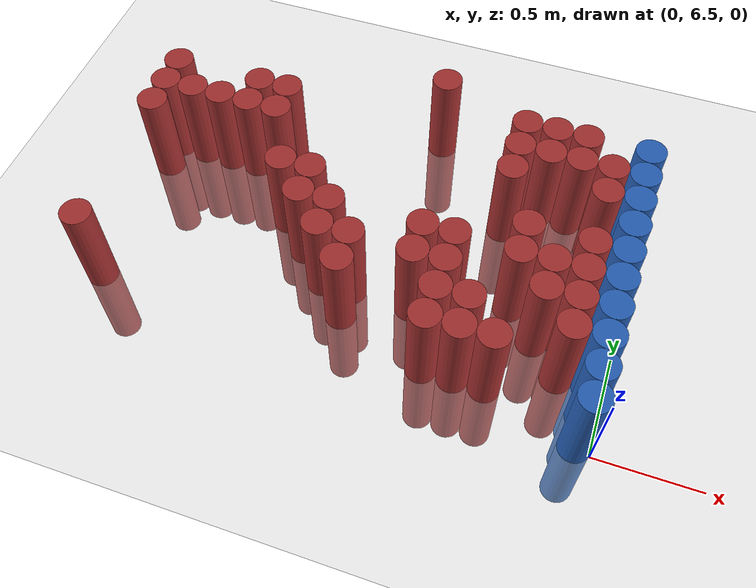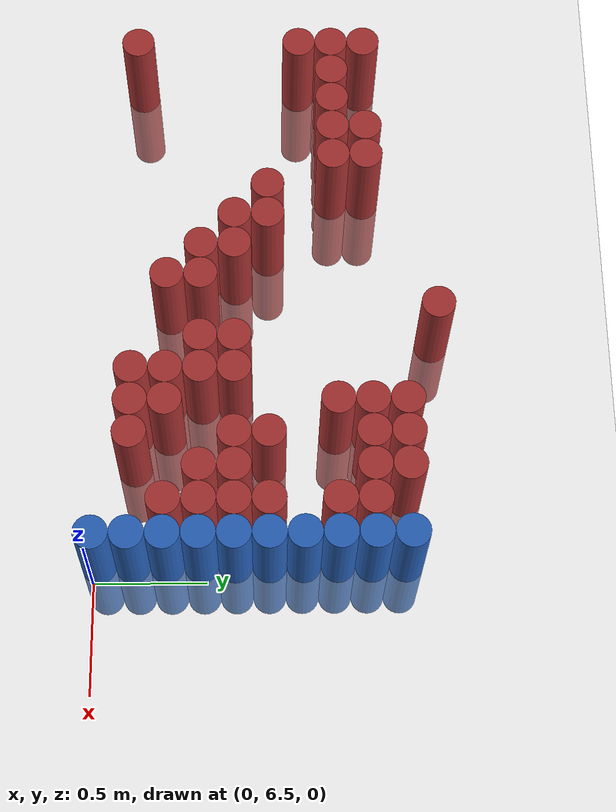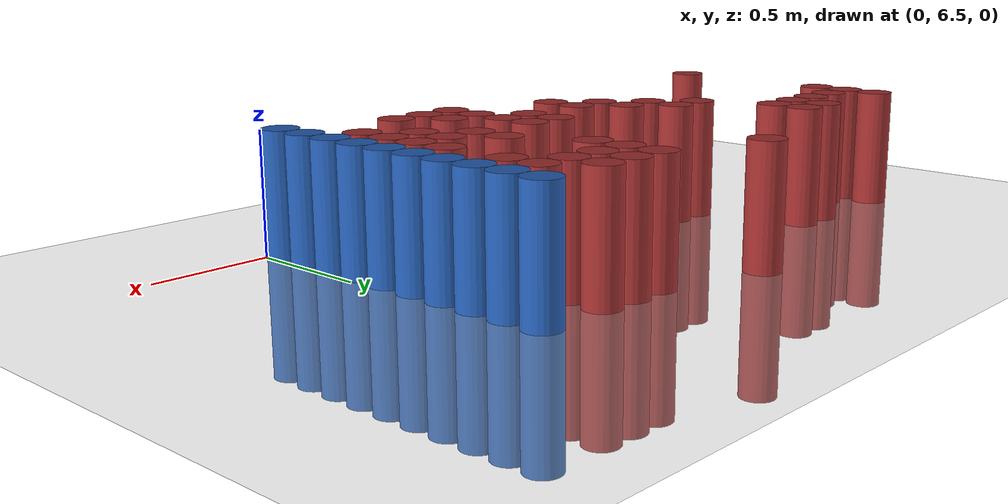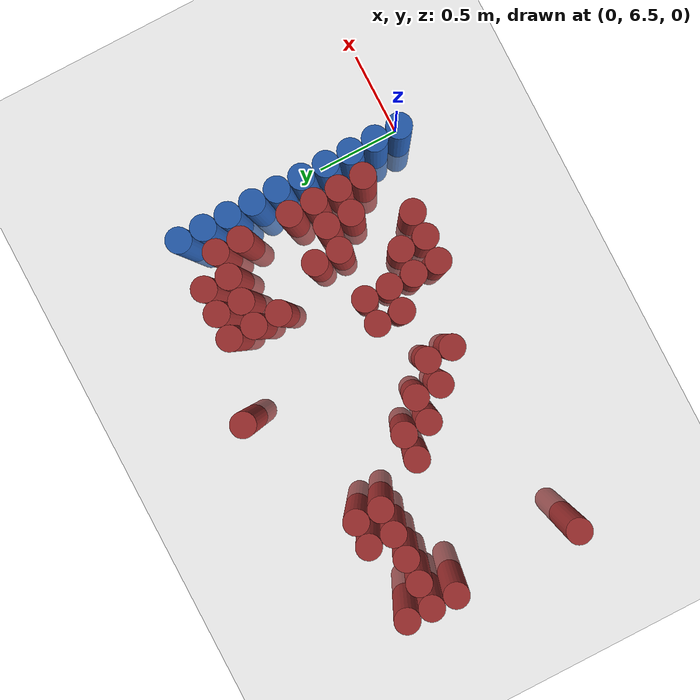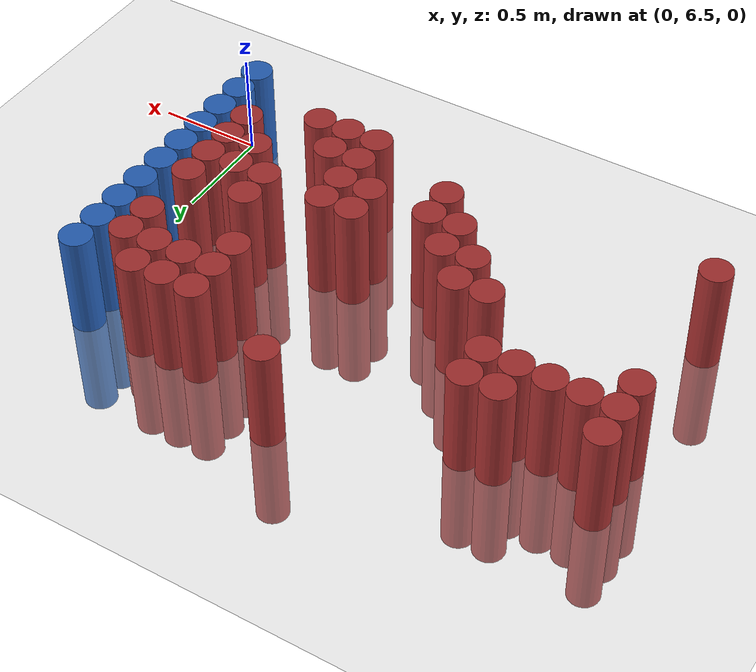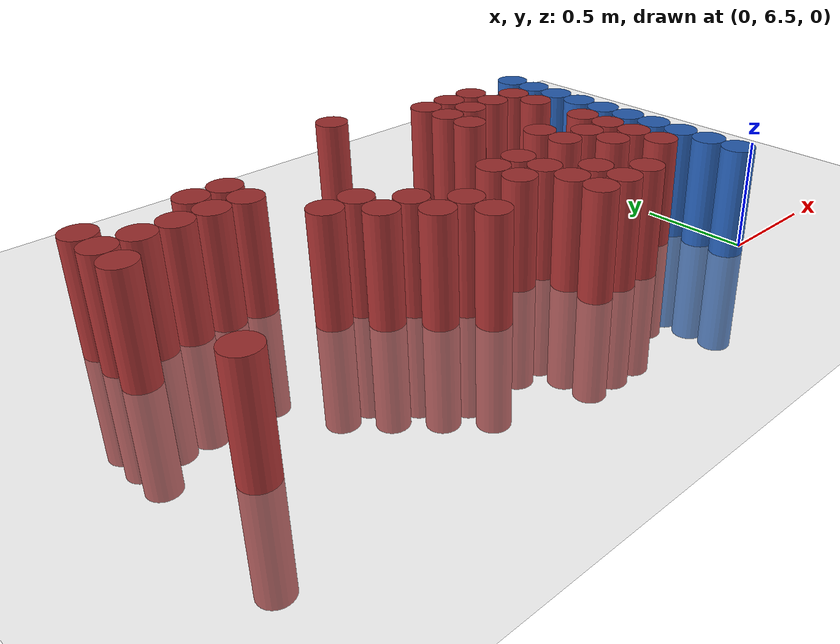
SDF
<sdf version="1.6">
 <world name="default">
  <model name="ground_plane">
   <static>1</static>
   <link name="link">
    <collision name="collision">
     <geometry><plane><normal>0 0 1</normal><size>100 100</size></plane></geometry>
     <surface><friction><ode><mu>100</mu><mu2>50</mu2></ode></friction></surface>
    </collision>
    <visual name="visual">
     <cast_shadows>0</cast_shadows>
     <geometry><plane><normal>0 0 1</normal><size>100 100</size></plane></geometry>
     <material>
      <script><uri>file://media/materials/scripts/gazebo.material</uri><name>Gazebo/Grey</name></script>
     </material>
    </visual>
   </link>
  </model>
  <model name="unit_cylinder_176">
   <static>1</static>
   <pose>-2.475000 6.675000 0.000000 0.000000 0.000000 0.000000</pose>
   <link name="link">
    <inertial>
     <mass>1</mass>
     <inertia><ixx>0.145833</ixx><ixy>0</ixy><ixz>0</ixz><iyy>0.145833</iyy><iyz>0</iyz><izz>0.125</izz></inertia>
    </inertial>
    <collision name="collision">
     <geometry><cylinder><radius>0.075000</radius><length>1</length></cylinder></geometry>
    </collision>
    <visual name="visual">
     <geometry><cylinder><radius>0.075000</radius><length>1</length></cylinder></geometry>
     <material>
      <ambient>0.648000 0.192000 0.192000 1</ambient>
      <diffuse>0.648000 0.192000 0.192000 1</diffuse>
     </material>
     <material>
      <script><name>Gazebo/Grey</name><uri>file://media/materials/scripts/gazebo.material</uri></script>
     </material>
    </visual>
   </link>
  </model>
  <model name="unit_cylinder_177">
   <static>1</static>
   <pose>-2.475000 7.425000 0.000000 0.000000 0.000000 0.000000</pose>
   <link name="link">
    <inertial>
     <mass>1</mass>
     <inertia><ixx>0.145833</ixx><ixy>0</ixy><ixz>0</ixz><iyy>0.145833</iyy><iyz>0</iyz><izz>0.125</izz></inertia>
    </inertial>
    <collision name="collision">
     <geometry><cylinder><radius>0.075000</radius><length>1</length></cylinder></geometry>
    </collision>
    <visual name="visual">
     <geometry><cylinder><radius>0.075000</radius><length>1</length></cylinder></geometry>
     <material>
      <ambient>0.648000 0.192000 0.192000 1</ambient>
      <diffuse>0.648000 0.192000 0.192000 1</diffuse>
     </material>
     <material>
      <script><name>Gazebo/Grey</name><uri>file://media/materials/scripts/gazebo.material</uri></script>
     </material>
    </visual>
   </link>
  </model>
  <model name="unit_cylinder_178">
   <static>1</static>
   <pose>-2.475000 7.575000 0.000000 0.000000 0.000000 0.000000</pose>
   <link name="link">
    <inertial>
     <mass>1</mass>
     <inertia><ixx>0.145833</ixx><ixy>0</ixy><ixz>0</ixz><iyy>0.145833</iyy><iyz>0</iyz><izz>0.125</izz></inertia>
    </inertial>
    <collision name="collision">
     <geometry><cylinder><radius>0.075000</radius><length>1</length></cylinder></geometry>
    </collision>
    <visual name="visual">
     <geometry><cylinder><radius>0.075000</radius><length>1</length></cylinder></geometry>
     <material>
      <ambient>0.648000 0.192000 0.192000 1</ambient>
      <diffuse>0.648000 0.192000 0.192000 1</diffuse>
     </material>
     <material>
      <script><name>Gazebo/Grey</name><uri>file://media/materials/scripts/gazebo.material</uri></script>
     </material>
    </visual>
   </link>
  </model>
  <model name="unit_cylinder_179">
   <static>1</static>
   <pose>-2.475000 7.725000 0.000000 0.000000 0.000000 0.000000</pose>
   <link name="link">
    <inertial>
     <mass>1</mass>
     <inertia><ixx>0.145833</ixx><ixy>0</ixy><ixz>0</ixz><iyy>0.145833</iyy><iyz>0</iyz><izz>0.125</izz></inertia>
    </inertial>
    <collision name="collision">
     <geometry><cylinder><radius>0.075000</radius><length>1</length></cylinder></geometry>
    </collision>
    <visual name="visual">
     <geometry><cylinder><radius>0.075000</radius><length>1</length></cylinder></geometry>
     <material>
      <ambient>0.648000 0.192000 0.192000 1</ambient>
      <diffuse>0.648000 0.192000 0.192000 1</diffuse>
     </material>
     <material>
      <script><name>Gazebo/Grey</name><uri>file://media/materials/scripts/gazebo.material</uri></script>
     </material>
    </visual>
   </link>
  </model>
  <model name="unit_cylinder_183">
   <static>1</static>
   <pose>-2.325000 7.575000 0.000000 0.000000 0.000000 0.000000</pose>
   <link name="link">
    <inertial>
     <mass>1</mass>
     <inertia><ixx>0.145833</ixx><ixy>0</ixy><ixz>0</ixz><iyy>0.145833</iyy><iyz>0</iyz><izz>0.125</izz></inertia>
    </inertial>
    <collision name="collision">
     <geometry><cylinder><radius>0.075000</radius><length>1</length></cylinder></geometry>
    </collision>
    <visual name="visual">
     <geometry><cylinder><radius>0.075000</radius><length>1</length></cylinder></geometry>
     <material>
      <ambient>0.648000 0.192000 0.192000 1</ambient>
      <diffuse>0.648000 0.192000 0.192000 1</diffuse>
     </material>
     <material>
      <script><name>Gazebo/Grey</name><uri>file://media/materials/scripts/gazebo.material</uri></script>
     </material>
    </visual>
   </link>
  </model>
  <model name="unit_cylinder_186">
   <static>1</static>
   <pose>-2.175000 7.575000 0.000000 0.000000 0.000000 0.000000</pose>
   <link name="link">
    <inertial>
     <mass>1</mass>
     <inertia><ixx>0.145833</ixx><ixy>0</ixy><ixz>0</ixz><iyy>0.145833</iyy><iyz>0</iyz><izz>0.125</izz></inertia>
    </inertial>
    <collision name="collision">
     <geometry><cylinder><radius>0.075000</radius><length>1</length></cylinder></geometry>
    </collision>
    <visual name="visual">
     <geometry><cylinder><radius>0.075000</radius><length>1</length></cylinder></geometry>
     <material>
      <ambient>0.648000 0.192000 0.192000 1</ambient>
      <diffuse>0.648000 0.192000 0.192000 1</diffuse>
     </material>
     <material>
      <script><name>Gazebo/Grey</name><uri>file://media/materials/scripts/gazebo.material</uri></script>
     </material>
    </visual>
   </link>
  </model>
  <model name="unit_cylinder_189">
   <static>1</static>
   <pose>-2.025000 7.575000 0.000000 0.000000 0.000000 0.000000</pose>
   <link name="link">
    <inertial>
     <mass>1</mass>
     <inertia><ixx>0.145833</ixx><ixy>0</ixy><ixz>0</ixz><iyy>0.145833</iyy><iyz>0</iyz><izz>0.125</izz></inertia>
    </inertial>
    <collision name="collision">
     <geometry><cylinder><radius>0.075000</radius><length>1</length></cylinder></geometry>
    </collision>
    <visual name="visual">
     <geometry><cylinder><radius>0.075000</radius><length>1</length></cylinder></geometry>
     <material>
      <ambient>0.648000 0.192000 0.192000 1</ambient>
      <diffuse>0.648000 0.192000 0.192000 1</diffuse>
     </material>
     <material>
      <script><name>Gazebo/Grey</name><uri>file://media/materials/scripts/gazebo.material</uri></script>
     </material>
    </visual>
   </link>
  </model>
  <model name="unit_cylinder_190">
   <static>1</static>
   <pose>-2.025000 7.725000 0.000000 0.000000 0.000000 0.000000</pose>
   <link name="link">
    <inertial>
     <mass>1</mass>
     <inertia><ixx>0.145833</ixx><ixy>0</ixy><ixz>0</ixz><iyy>0.145833</iyy><iyz>0</iyz><izz>0.125</izz></inertia>
    </inertial>
    <collision name="collision">
     <geometry><cylinder><radius>0.075000</radius><length>1</length></cylinder></geometry>
    </collision>
    <visual name="visual">
     <geometry><cylinder><radius>0.075000</radius><length>1</length></cylinder></geometry>
     <material>
      <ambient>0.648000 0.192000 0.192000 1</ambient>
      <diffuse>0.648000 0.192000 0.192000 1</diffuse>
     </material>
     <material>
      <script><name>Gazebo/Grey</name><uri>file://media/materials/scripts/gazebo.material</uri></script>
     </material>
    </visual>
   </link>
  </model>
  <model name="unit_cylinder_193">
   <static>1</static>
   <pose>-1.875000 7.575000 0.000000 0.000000 0.000000 0.000000</pose>
   <link name="link">
    <inertial>
     <mass>1</mass>
     <inertia><ixx>0.145833</ixx><ixy>0</ixy><ixz>0</ixz><iyy>0.145833</iyy><iyz>0</iyz><izz>0.125</izz></inertia>
    </inertial>
    <collision name="collision">
     <geometry><cylinder><radius>0.075000</radius><length>1</length></cylinder></geometry>
    </collision>
    <visual name="visual">
     <geometry><cylinder><radius>0.075000</radius><length>1</length></cylinder></geometry>
     <material>
      <ambient>0.648000 0.192000 0.192000 1</ambient>
      <diffuse>0.648000 0.192000 0.192000 1</diffuse>
     </material>
     <material>
      <script><name>Gazebo/Grey</name><uri>file://media/materials/scripts/gazebo.material</uri></script>
     </material>
    </visual>
   </link>
  </model>
  <model name="unit_cylinder_194">
   <static>1</static>
   <pose>-1.875000 7.725000 0.000000 0.000000 0.000000 0.000000</pose>
   <link name="link">
    <inertial>
     <mass>1</mass>
     <inertia><ixx>0.145833</ixx><ixy>0</ixy><ixz>0</ixz><iyy>0.145833</iyy><iyz>0</iyz><izz>0.125</izz></inertia>
    </inertial>
    <collision name="collision">
     <geometry><cylinder><radius>0.075000</radius><length>1</length></cylinder></geometry>
    </collision>
    <visual name="visual">
     <geometry><cylinder><radius>0.075000</radius><length>1</length></cylinder></geometry>
     <material>
      <ambient>0.648000 0.192000 0.192000 1</ambient>
      <diffuse>0.648000 0.192000 0.192000 1</diffuse>
     </material>
     <material>
      <script><name>Gazebo/Grey</name><uri>file://media/materials/scripts/gazebo.material</uri></script>
     </material>
    </visual>
   </link>
  </model>
  <model name="unit_cylinder_202">
   <static>1</static>
   <pose>-1.725000 7.275000 0.000000 0.000000 0.000000 0.000000</pose>
   <link name="link">
    <inertial>
     <mass>1</mass>
     <inertia><ixx>0.145833</ixx><ixy>0</ixy><ixz>0</ixz><iyy>0.145833</iyy><iyz>0</iyz><izz>0.125</izz></inertia>
    </inertial>
    <collision name="collision">
     <geometry><cylinder><radius>0.075000</radius><length>1</length></cylinder></geometry>
    </collision>
    <visual name="visual">
     <geometry><cylinder><radius>0.075000</radius><length>1</length></cylinder></geometry>
     <material>
      <ambient>0.648000 0.192000 0.192000 1</ambient>
      <diffuse>0.648000 0.192000 0.192000 1</diffuse>
     </material>
     <material>
      <script><name>Gazebo/Grey</name><uri>file://media/materials/scripts/gazebo.material</uri></script>
     </material>
    </visual>
   </link>
  </model>
  <model name="unit_cylinder_205">
   <static>1</static>
   <pose>-1.575000 7.125000 0.000000 0.000000 0.000000 0.000000</pose>
   <link name="link">
    <inertial>
     <mass>1</mass>
     <inertia><ixx>0.145833</ixx><ixy>0</ixy><ixz>0</ixz><iyy>0.145833</iyy><iyz>0</iyz><izz>0.125</izz></inertia>
    </inertial>
    <collision name="collision">
     <geometry><cylinder><radius>0.075000</radius><length>1</length></cylinder></geometry>
    </collision>
    <visual name="visual">
     <geometry><cylinder><radius>0.075000</radius><length>1</length></cylinder></geometry>
     <material>
      <ambient>0.648000 0.192000 0.192000 1</ambient>
      <diffuse>0.648000 0.192000 0.192000 1</diffuse>
     </material>
     <material>
      <script><name>Gazebo/Grey</name><uri>file://media/materials/scripts/gazebo.material</uri></script>
     </material>
    </visual>
   </link>
  </model>
  <model name="unit_cylinder_206">
   <static>1</static>
   <pose>-1.575000 7.275000 0.000000 0.000000 0.000000 0.000000</pose>
   <link name="link">
    <inertial>
     <mass>1</mass>
     <inertia><ixx>0.145833</ixx><ixy>0</ixy><ixz>0</ixz><iyy>0.145833</iyy><iyz>0</iyz><izz>0.125</izz></inertia>
    </inertial>
    <collision name="collision">
     <geometry><cylinder><radius>0.075000</radius><length>1</length></cylinder></geometry>
    </collision>
    <visual name="visual">
     <geometry><cylinder><radius>0.075000</radius><length>1</length></cylinder></geometry>
     <material>
      <ambient>0.648000 0.192000 0.192000 1</ambient>
      <diffuse>0.648000 0.192000 0.192000 1</diffuse>
     </material>
     <material>
      <script><name>Gazebo/Grey</name><uri>file://media/materials/scripts/gazebo.material</uri></script>
     </material>
    </visual>
   </link>
  </model>
  <model name="unit_cylinder_212">
   <static>1</static>
   <pose>-1.425000 6.975000 0.000000 0.000000 0.000000 0.000000</pose>
   <link name="link">
    <inertial>
     <mass>1</mass>
     <inertia><ixx>0.145833</ixx><ixy>0</ixy><ixz>0</ixz><iyy>0.145833</iyy><iyz>0</iyz><izz>0.125</izz></inertia>
    </inertial>
    <collision name="collision">
     <geometry><cylinder><radius>0.075000</radius><length>1</length></cylinder></geometry>
    </collision>
    <visual name="visual">
     <geometry><cylinder><radius>0.075000</radius><length>1</length></cylinder></geometry>
     <material>
      <ambient>0.648000 0.192000 0.192000 1</ambient>
      <diffuse>0.648000 0.192000 0.192000 1</diffuse>
     </material>
     <material>
      <script><name>Gazebo/Grey</name><uri>file://media/materials/scripts/gazebo.material</uri></script>
     </material>
    </visual>
   </link>
  </model>
  <model name="unit_cylinder_213">
   <static>1</static>
   <pose>-1.425000 7.125000 0.000000 0.000000 0.000000 0.000000</pose>
   <link name="link">
    <inertial>
     <mass>1</mass>
     <inertia><ixx>0.145833</ixx><ixy>0</ixy><ixz>0</ixz><iyy>0.145833</iyy><iyz>0</iyz><izz>0.125</izz></inertia>
    </inertial>
    <collision name="collision">
     <geometry><cylinder><radius>0.075000</radius><length>1</length></cylinder></geometry>
    </collision>
    <visual name="visual">
     <geometry><cylinder><radius>0.075000</radius><length>1</length></cylinder></geometry>
     <material>
      <ambient>0.648000 0.192000 0.192000 1</ambient>
      <diffuse>0.648000 0.192000 0.192000 1</diffuse>
     </material>
     <material>
      <script><name>Gazebo/Grey</name><uri>file://media/materials/scripts/gazebo.material</uri></script>
     </material>
    </visual>
   </link>
  </model>
  <model name="unit_cylinder_217">
   <static>1</static>
   <pose>-1.275000 6.825000 0.000000 0.000000 0.000000 0.000000</pose>
   <link name="link">
    <inertial>
     <mass>1</mass>
     <inertia><ixx>0.145833</ixx><ixy>0</ixy><ixz>0</ixz><iyy>0.145833</iyy><iyz>0</iyz><izz>0.125</izz></inertia>
    </inertial>
    <collision name="collision">
     <geometry><cylinder><radius>0.075000</radius><length>1</length></cylinder></geometry>
    </collision>
    <visual name="visual">
     <geometry><cylinder><radius>0.075000</radius><length>1</length></cylinder></geometry>
     <material>
      <ambient>0.648000 0.192000 0.192000 1</ambient>
      <diffuse>0.648000 0.192000 0.192000 1</diffuse>
     </material>
     <material>
      <script><name>Gazebo/Grey</name><uri>file://media/materials/scripts/gazebo.material</uri></script>
     </material>
    </visual>
   </link>
  </model>
  <model name="unit_cylinder_218">
   <static>1</static>
   <pose>-1.275000 6.975000 0.000000 0.000000 0.000000 0.000000</pose>
   <link name="link">
    <inertial>
     <mass>1</mass>
     <inertia><ixx>0.145833</ixx><ixy>0</ixy><ixz>0</ixz><iyy>0.145833</iyy><iyz>0</iyz><izz>0.125</izz></inertia>
    </inertial>
    <collision name="collision">
     <geometry><cylinder><radius>0.075000</radius><length>1</length></cylinder></geometry>
    </collision>
    <visual name="visual">
     <geometry><cylinder><radius>0.075000</radius><length>1</length></cylinder></geometry>
     <material>
      <ambient>0.648000 0.192000 0.192000 1</ambient>
      <diffuse>0.648000 0.192000 0.192000 1</diffuse>
     </material>
     <material>
      <script><name>Gazebo/Grey</name><uri>file://media/materials/scripts/gazebo.material</uri></script>
     </material>
    </visual>
   </link>
  </model>
  <model name="unit_cylinder_226">
   <static>1</static>
   <pose>-1.125000 8.025000 0.000000 0.000000 0.000000 0.000000</pose>
   <link name="link">
    <inertial>
     <mass>1</mass>
     <inertia><ixx>0.145833</ixx><ixy>0</ixy><ixz>0</ixz><iyy>0.145833</iyy><iyz>0</iyz><izz>0.125</izz></inertia>
    </inertial>
    <collision name="collision">
     <geometry><cylinder><radius>0.075000</radius><length>1</length></cylinder></geometry>
    </collision>
    <visual name="visual">
     <geometry><cylinder><radius>0.075000</radius><length>1</length></cylinder></geometry>
     <material>
      <ambient>0.648000 0.192000 0.192000 1</ambient>
      <diffuse>0.648000 0.192000 0.192000 1</diffuse>
     </material>
     <material>
      <script><name>Gazebo/Grey</name><uri>file://media/materials/scripts/gazebo.material</uri></script>
     </material>
    </visual>
   </link>
  </model>
  <model name="unit_cylinder_233">
   <static>1</static>
   <pose>-0.975000 6.975000 0.000000 0.000000 0.000000 0.000000</pose>
   <link name="link">
    <inertial>
     <mass>1</mass>
     <inertia><ixx>0.145833</ixx><ixy>0</ixy><ixz>0</ixz><iyy>0.145833</iyy><iyz>0</iyz><izz>0.125</izz></inertia>
    </inertial>
    <collision name="collision">
     <geometry><cylinder><radius>0.075000</radius><length>1</length></cylinder></geometry>
    </collision>
    <visual name="visual">
     <geometry><cylinder><radius>0.075000</radius><length>1</length></cylinder></geometry>
     <material>
      <ambient>0.648000 0.192000 0.192000 1</ambient>
      <diffuse>0.648000 0.192000 0.192000 1</diffuse>
     </material>
     <material>
      <script><name>Gazebo/Grey</name><uri>file://media/materials/scripts/gazebo.material</uri></script>
     </material>
    </visual>
   </link>
  </model>
  <model name="unit_cylinder_234">
   <static>1</static>
   <pose>-0.975000 7.125000 0.000000 0.000000 0.000000 0.000000</pose>
   <link name="link">
    <inertial>
     <mass>1</mass>
     <inertia><ixx>0.145833</ixx><ixy>0</ixy><ixz>0</ixz><iyy>0.145833</iyy><iyz>0</iyz><izz>0.125</izz></inertia>
    </inertial>
    <collision name="collision">
     <geometry><cylinder><radius>0.075000</radius><length>1</length></cylinder></geometry>
    </collision>
    <visual name="visual">
     <geometry><cylinder><radius>0.075000</radius><length>1</length></cylinder></geometry>
     <material>
      <ambient>0.648000 0.192000 0.192000 1</ambient>
      <diffuse>0.648000 0.192000 0.192000 1</diffuse>
     </material>
     <material>
      <script><name>Gazebo/Grey</name><uri>file://media/materials/scripts/gazebo.material</uri></script>
     </material>
    </visual>
   </link>
  </model>
  <model name="unit_cylinder_240">
   <static>1</static>
   <pose>-0.825000 6.675000 0.000000 0.000000 0.000000 0.000000</pose>
   <link name="link">
    <inertial>
     <mass>1</mass>
     <inertia><ixx>0.145833</ixx><ixy>0</ixy><ixz>0</ixz><iyy>0.145833</iyy><iyz>0</iyz><izz>0.125</izz></inertia>
    </inertial>
    <collision name="collision">
     <geometry><cylinder><radius>0.075000</radius><length>1</length></cylinder></geometry>
    </collision>
    <visual name="visual">
     <geometry><cylinder><radius>0.075000</radius><length>1</length></cylinder></geometry>
     <material>
      <ambient>0.648000 0.192000 0.192000 1</ambient>
      <diffuse>0.648000 0.192000 0.192000 1</diffuse>
     </material>
     <material>
      <script><name>Gazebo/Grey</name><uri>file://media/materials/scripts/gazebo.material</uri></script>
     </material>
    </visual>
   </link>
  </model>
  <model name="unit_cylinder_241">
   <static>1</static>
   <pose>-0.825000 6.825000 0.000000 0.000000 0.000000 0.000000</pose>
   <link name="link">
    <inertial>
     <mass>1</mass>
     <inertia><ixx>0.145833</ixx><ixy>0</ixy><ixz>0</ixz><iyy>0.145833</iyy><iyz>0</iyz><izz>0.125</izz></inertia>
    </inertial>
    <collision name="collision">
     <geometry><cylinder><radius>0.075000</radius><length>1</length></cylinder></geometry>
    </collision>
    <visual name="visual">
     <geometry><cylinder><radius>0.075000</radius><length>1</length></cylinder></geometry>
     <material>
      <ambient>0.648000 0.192000 0.192000 1</ambient>
      <diffuse>0.648000 0.192000 0.192000 1</diffuse>
     </material>
     <material>
      <script><name>Gazebo/Grey</name><uri>file://media/materials/scripts/gazebo.material</uri></script>
     </material>
    </visual>
   </link>
  </model>
  <model name="unit_cylinder_242">
   <static>1</static>
   <pose>-0.825000 6.975000 0.000000 0.000000 0.000000 0.000000</pose>
   <link name="link">
    <inertial>
     <mass>1</mass>
     <inertia><ixx>0.145833</ixx><ixy>0</ixy><ixz>0</ixz><iyy>0.145833</iyy><iyz>0</iyz><izz>0.125</izz></inertia>
    </inertial>
    <collision name="collision">
     <geometry><cylinder><radius>0.075000</radius><length>1</length></cylinder></geometry>
    </collision>
    <visual name="visual">
     <geometry><cylinder><radius>0.075000</radius><length>1</length></cylinder></geometry>
     <material>
      <ambient>0.648000 0.192000 0.192000 1</ambient>
      <diffuse>0.648000 0.192000 0.192000 1</diffuse>
     </material>
     <material>
      <script><name>Gazebo/Grey</name><uri>file://media/materials/scripts/gazebo.material</uri></script>
     </material>
    </visual>
   </link>
  </model>
  <model name="unit_cylinder_243">
   <static>1</static>
   <pose>-0.825000 7.125000 0.000000 0.000000 0.000000 0.000000</pose>
   <link name="link">
    <inertial>
     <mass>1</mass>
     <inertia><ixx>0.145833</ixx><ixy>0</ixy><ixz>0</ixz><iyy>0.145833</iyy><iyz>0</iyz><izz>0.125</izz></inertia>
    </inertial>
    <collision name="collision">
     <geometry><cylinder><radius>0.075000</radius><length>1</length></cylinder></geometry>
    </collision>
    <visual name="visual">
     <geometry><cylinder><radius>0.075000</radius><length>1</length></cylinder></geometry>
     <material>
      <ambient>0.648000 0.192000 0.192000 1</ambient>
      <diffuse>0.648000 0.192000 0.192000 1</diffuse>
     </material>
     <material>
      <script><name>Gazebo/Grey</name><uri>file://media/materials/scripts/gazebo.material</uri></script>
     </material>
    </visual>
   </link>
  </model>
  <model name="unit_cylinder_248">
   <static>1</static>
   <pose>-0.675000 6.675000 0.000000 0.000000 0.000000 0.000000</pose>
   <link name="link">
    <inertial>
     <mass>1</mass>
     <inertia><ixx>0.145833</ixx><ixy>0</ixy><ixz>0</ixz><iyy>0.145833</iyy><iyz>0</iyz><izz>0.125</izz></inertia>
    </inertial>
    <collision name="collision">
     <geometry><cylinder><radius>0.075000</radius><length>1</length></cylinder></geometry>
    </collision>
    <visual name="visual">
     <geometry><cylinder><radius>0.075000</radius><length>1</length></cylinder></geometry>
     <material>
      <ambient>0.648000 0.192000 0.192000 1</ambient>
      <diffuse>0.648000 0.192000 0.192000 1</diffuse>
     </material>
     <material>
      <script><name>Gazebo/Grey</name><uri>file://media/materials/scripts/gazebo.material</uri></script>
     </material>
    </visual>
   </link>
  </model>
  <model name="unit_cylinder_249">
   <static>1</static>
   <pose>-0.675000 6.825000 0.000000 0.000000 0.000000 0.000000</pose>
   <link name="link">
    <inertial>
     <mass>1</mass>
     <inertia><ixx>0.145833</ixx><ixy>0</ixy><ixz>0</ixz><iyy>0.145833</iyy><iyz>0</iyz><izz>0.125</izz></inertia>
    </inertial>
    <collision name="collision">
     <geometry><cylinder><radius>0.075000</radius><length>1</length></cylinder></geometry>
    </collision>
    <visual name="visual">
     <geometry><cylinder><radius>0.075000</radius><length>1</length></cylinder></geometry>
     <material>
      <ambient>0.648000 0.192000 0.192000 1</ambient>
      <diffuse>0.648000 0.192000 0.192000 1</diffuse>
     </material>
     <material>
      <script><name>Gazebo/Grey</name><uri>file://media/materials/scripts/gazebo.material</uri></script>
     </material>
    </visual>
   </link>
  </model>
  <model name="unit_cylinder_250">
   <static>1</static>
   <pose>-0.675000 7.575000 0.000000 0.000000 0.000000 0.000000</pose>
   <link name="link">
    <inertial>
     <mass>1</mass>
     <inertia><ixx>0.145833</ixx><ixy>0</ixy><ixz>0</ixz><iyy>0.145833</iyy><iyz>0</iyz><izz>0.125</izz></inertia>
    </inertial>
    <collision name="collision">
     <geometry><cylinder><radius>0.075000</radius><length>1</length></cylinder></geometry>
    </collision>
    <visual name="visual">
     <geometry><cylinder><radius>0.075000</radius><length>1</length></cylinder></geometry>
     <material>
      <ambient>0.648000 0.192000 0.192000 1</ambient>
      <diffuse>0.648000 0.192000 0.192000 1</diffuse>
     </material>
     <material>
      <script><name>Gazebo/Grey</name><uri>file://media/materials/scripts/gazebo.material</uri></script>
     </material>
    </visual>
   </link>
  </model>
  <model name="unit_cylinder_251">
   <static>1</static>
   <pose>-0.675000 7.725000 0.000000 0.000000 0.000000 0.000000</pose>
   <link name="link">
    <inertial>
     <mass>1</mass>
     <inertia><ixx>0.145833</ixx><ixy>0</ixy><ixz>0</ixz><iyy>0.145833</iyy><iyz>0</iyz><izz>0.125</izz></inertia>
    </inertial>
    <collision name="collision">
     <geometry><cylinder><radius>0.075000</radius><length>1</length></cylinder></geometry>
    </collision>
    <visual name="visual">
     <geometry><cylinder><radius>0.075000</radius><length>1</length></cylinder></geometry>
     <material>
      <ambient>0.648000 0.192000 0.192000 1</ambient>
      <diffuse>0.648000 0.192000 0.192000 1</diffuse>
     </material>
     <material>
      <script><name>Gazebo/Grey</name><uri>file://media/materials/scripts/gazebo.material</uri></script>
     </material>
    </visual>
   </link>
  </model>
  <model name="unit_cylinder_252">
   <static>1</static>
   <pose>-0.675000 7.875000 0.000000 0.000000 0.000000 0.000000</pose>
   <link name="link">
    <inertial>
     <mass>1</mass>
     <inertia><ixx>0.145833</ixx><ixy>0</ixy><ixz>0</ixz><iyy>0.145833</iyy><iyz>0</iyz><izz>0.125</izz></inertia>
    </inertial>
    <collision name="collision">
     <geometry><cylinder><radius>0.075000</radius><length>1</length></cylinder></geometry>
    </collision>
    <visual name="visual">
     <geometry><cylinder><radius>0.075000</radius><length>1</length></cylinder></geometry>
     <material>
      <ambient>0.648000 0.192000 0.192000 1</ambient>
      <diffuse>0.648000 0.192000 0.192000 1</diffuse>
     </material>
     <material>
      <script><name>Gazebo/Grey</name><uri>file://media/materials/scripts/gazebo.material</uri></script>
     </material>
    </visual>
   </link>
  </model>
  <model name="unit_cylinder_259">
   <static>1</static>
   <pose>-0.525000 6.675000 0.000000 0.000000 0.000000 0.000000</pose>
   <link name="link">
    <inertial>
     <mass>1</mass>
     <inertia><ixx>0.145833</ixx><ixy>0</ixy><ixz>0</ixz><iyy>0.145833</iyy><iyz>0</iyz><izz>0.125</izz></inertia>
    </inertial>
    <collision name="collision">
     <geometry><cylinder><radius>0.075000</radius><length>1</length></cylinder></geometry>
    </collision>
    <visual name="visual">
     <geometry><cylinder><radius>0.075000</radius><length>1</length></cylinder></geometry>
     <material>
      <ambient>0.648000 0.192000 0.192000 1</ambient>
      <diffuse>0.648000 0.192000 0.192000 1</diffuse>
     </material>
     <material>
      <script><name>Gazebo/Grey</name><uri>file://media/materials/scripts/gazebo.material</uri></script>
     </material>
    </visual>
   </link>
  </model>
  <model name="unit_cylinder_260">
   <static>1</static>
   <pose>-0.525000 7.125000 0.000000 0.000000 0.000000 0.000000</pose>
   <link name="link">
    <inertial>
     <mass>1</mass>
     <inertia><ixx>0.145833</ixx><ixy>0</ixy><ixz>0</ixz><iyy>0.145833</iyy><iyz>0</iyz><izz>0.125</izz></inertia>
    </inertial>
    <collision name="collision">
     <geometry><cylinder><radius>0.075000</radius><length>1</length></cylinder></geometry>
    </collision>
    <visual name="visual">
     <geometry><cylinder><radius>0.075000</radius><length>1</length></cylinder></geometry>
     <material>
      <ambient>0.648000 0.192000 0.192000 1</ambient>
      <diffuse>0.648000 0.192000 0.192000 1</diffuse>
     </material>
     <material>
      <script><name>Gazebo/Grey</name><uri>file://media/materials/scripts/gazebo.material</uri></script>
     </material>
    </visual>
   </link>
  </model>
  <model name="unit_cylinder_261">
   <static>1</static>
   <pose>-0.525000 7.275000 0.000000 0.000000 0.000000 0.000000</pose>
   <link name="link">
    <inertial>
     <mass>1</mass>
     <inertia><ixx>0.145833</ixx><ixy>0</ixy><ixz>0</ixz><iyy>0.145833</iyy><iyz>0</iyz><izz>0.125</izz></inertia>
    </inertial>
    <collision name="collision">
     <geometry><cylinder><radius>0.075000</radius><length>1</length></cylinder></geometry>
    </collision>
    <visual name="visual">
     <geometry><cylinder><radius>0.075000</radius><length>1</length></cylinder></geometry>
     <material>
      <ambient>0.648000 0.192000 0.192000 1</ambient>
      <diffuse>0.648000 0.192000 0.192000 1</diffuse>
     </material>
     <material>
      <script><name>Gazebo/Grey</name><uri>file://media/materials/scripts/gazebo.material</uri></script>
     </material>
    </visual>
   </link>
  </model>
  <model name="unit_cylinder_262">
   <static>1</static>
   <pose>-0.525000 7.725000 0.000000 0.000000 0.000000 0.000000</pose>
   <link name="link">
    <inertial>
     <mass>1</mass>
     <inertia><ixx>0.145833</ixx><ixy>0</ixy><ixz>0</ixz><iyy>0.145833</iyy><iyz>0</iyz><izz>0.125</izz></inertia>
    </inertial>
    <collision name="collision">
     <geometry><cylinder><radius>0.075000</radius><length>1</length></cylinder></geometry>
    </collision>
    <visual name="visual">
     <geometry><cylinder><radius>0.075000</radius><length>1</length></cylinder></geometry>
     <material>
      <ambient>0.648000 0.192000 0.192000 1</ambient>
      <diffuse>0.648000 0.192000 0.192000 1</diffuse>
     </material>
     <material>
      <script><name>Gazebo/Grey</name><uri>file://media/materials/scripts/gazebo.material</uri></script>
     </material>
    </visual>
   </link>
  </model>
  <model name="unit_cylinder_263">
   <static>1</static>
   <pose>-0.525000 7.875000 0.000000 0.000000 0.000000 0.000000</pose>
   <link name="link">
    <inertial>
     <mass>1</mass>
     <inertia><ixx>0.145833</ixx><ixy>0</ixy><ixz>0</ixz><iyy>0.145833</iyy><iyz>0</iyz><izz>0.125</izz></inertia>
    </inertial>
    <collision name="collision">
     <geometry><cylinder><radius>0.075000</radius><length>1</length></cylinder></geometry>
    </collision>
    <visual name="visual">
     <geometry><cylinder><radius>0.075000</radius><length>1</length></cylinder></geometry>
     <material>
      <ambient>0.648000 0.192000 0.192000 1</ambient>
      <diffuse>0.648000 0.192000 0.192000 1</diffuse>
     </material>
     <material>
      <script><name>Gazebo/Grey</name><uri>file://media/materials/scripts/gazebo.material</uri></script>
     </material>
    </visual>
   </link>
  </model>
  <model name="unit_cylinder_269">
   <static>1</static>
   <pose>-0.375000 6.975000 0.000000 0.000000 0.000000 0.000000</pose>
   <link name="link">
    <inertial>
     <mass>1</mass>
     <inertia><ixx>0.145833</ixx><ixy>0</ixy><ixz>0</ixz><iyy>0.145833</iyy><iyz>0</iyz><izz>0.125</izz></inertia>
    </inertial>
    <collision name="collision">
     <geometry><cylinder><radius>0.075000</radius><length>1</length></cylinder></geometry>
    </collision>
    <visual name="visual">
     <geometry><cylinder><radius>0.075000</radius><length>1</length></cylinder></geometry>
     <material>
      <ambient>0.648000 0.192000 0.192000 1</ambient>
      <diffuse>0.648000 0.192000 0.192000 1</diffuse>
     </material>
     <material>
      <script><name>Gazebo/Grey</name><uri>file://media/materials/scripts/gazebo.material</uri></script>
     </material>
    </visual>
   </link>
  </model>
  <model name="unit_cylinder_270">
   <static>1</static>
   <pose>-0.375000 7.125000 0.000000 0.000000 0.000000 0.000000</pose>
   <link name="link">
    <inertial>
     <mass>1</mass>
     <inertia><ixx>0.145833</ixx><ixy>0</ixy><ixz>0</ixz><iyy>0.145833</iyy><iyz>0</iyz><izz>0.125</izz></inertia>
    </inertial>
    <collision name="collision">
     <geometry><cylinder><radius>0.075000</radius><length>1</length></cylinder></geometry>
    </collision>
    <visual name="visual">
     <geometry><cylinder><radius>0.075000</radius><length>1</length></cylinder></geometry>
     <material>
      <ambient>0.648000 0.192000 0.192000 1</ambient>
      <diffuse>0.648000 0.192000 0.192000 1</diffuse>
     </material>
     <material>
      <script><name>Gazebo/Grey</name><uri>file://media/materials/scripts/gazebo.material</uri></script>
     </material>
    </visual>
   </link>
  </model>
  <model name="unit_cylinder_271">
   <static>1</static>
   <pose>-0.375000 7.725000 0.000000 0.000000 0.000000 0.000000</pose>
   <link name="link">
    <inertial>
     <mass>1</mass>
     <inertia><ixx>0.145833</ixx><ixy>0</ixy><ixz>0</ixz><iyy>0.145833</iyy><iyz>0</iyz><izz>0.125</izz></inertia>
    </inertial>
    <collision name="collision">
     <geometry><cylinder><radius>0.075000</radius><length>1</length></cylinder></geometry>
    </collision>
    <visual name="visual">
     <geometry><cylinder><radius>0.075000</radius><length>1</length></cylinder></geometry>
     <material>
      <ambient>0.648000 0.192000 0.192000 1</ambient>
      <diffuse>0.648000 0.192000 0.192000 1</diffuse>
     </material>
     <material>
      <script><name>Gazebo/Grey</name><uri>file://media/materials/scripts/gazebo.material</uri></script>
     </material>
    </visual>
   </link>
  </model>
  <model name="unit_cylinder_272">
   <static>1</static>
   <pose>-0.375000 7.875000 0.000000 0.000000 0.000000 0.000000</pose>
   <link name="link">
    <inertial>
     <mass>1</mass>
     <inertia><ixx>0.145833</ixx><ixy>0</ixy><ixz>0</ixz><iyy>0.145833</iyy><iyz>0</iyz><izz>0.125</izz></inertia>
    </inertial>
    <collision name="collision">
     <geometry><cylinder><radius>0.075000</radius><length>1</length></cylinder></geometry>
    </collision>
    <visual name="visual">
     <geometry><cylinder><radius>0.075000</radius><length>1</length></cylinder></geometry>
     <material>
      <ambient>0.648000 0.192000 0.192000 1</ambient>
      <diffuse>0.648000 0.192000 0.192000 1</diffuse>
     </material>
     <material>
      <script><name>Gazebo/Grey</name><uri>file://media/materials/scripts/gazebo.material</uri></script>
     </material>
    </visual>
   </link>
  </model>
  <model name="unit_cylinder_285">
   <static>1</static>
   <pose>-0.225000 6.825000 0.000000 0.000000 0.000000 0.000000</pose>
   <link name="link">
    <inertial>
     <mass>1</mass>
     <inertia><ixx>0.145833</ixx><ixy>0</ixy><ixz>0</ixz><iyy>0.145833</iyy><iyz>0</iyz><izz>0.125</izz></inertia>
    </inertial>
    <collision name="collision">
     <geometry><cylinder><radius>0.075000</radius><length>1</length></cylinder></geometry>
    </collision>
    <visual name="visual">
     <geometry><cylinder><radius>0.075000</radius><length>1</length></cylinder></geometry>
     <material>
      <ambient>0.648000 0.192000 0.192000 1</ambient>
      <diffuse>0.648000 0.192000 0.192000 1</diffuse>
     </material>
     <material>
      <script><name>Gazebo/Grey</name><uri>file://media/materials/scripts/gazebo.material</uri></script>
     </material>
    </visual>
   </link>
  </model>
  <model name="unit_cylinder_286">
   <static>1</static>
   <pose>-0.225000 6.975000 0.000000 0.000000 0.000000 0.000000</pose>
   <link name="link">
    <inertial>
     <mass>1</mass>
     <inertia><ixx>0.145833</ixx><ixy>0</ixy><ixz>0</ixz><iyy>0.145833</iyy><iyz>0</iyz><izz>0.125</izz></inertia>
    </inertial>
    <collision name="collision">
     <geometry><cylinder><radius>0.075000</radius><length>1</length></cylinder></geometry>
    </collision>
    <visual name="visual">
     <geometry><cylinder><radius>0.075000</radius><length>1</length></cylinder></geometry>
     <material>
      <ambient>0.648000 0.192000 0.192000 1</ambient>
      <diffuse>0.648000 0.192000 0.192000 1</diffuse>
     </material>
     <material>
      <script><name>Gazebo/Grey</name><uri>file://media/materials/scripts/gazebo.material</uri></script>
     </material>
    </visual>
   </link>
  </model>
  <model name="unit_cylinder_287">
   <static>1</static>
   <pose>-0.225000 7.125000 0.000000 0.000000 0.000000 0.000000</pose>
   <link name="link">
    <inertial>
     <mass>1</mass>
     <inertia><ixx>0.145833</ixx><ixy>0</ixy><ixz>0</ixz><iyy>0.145833</iyy><iyz>0</iyz><izz>0.125</izz></inertia>
    </inertial>
    <collision name="collision">
     <geometry><cylinder><radius>0.075000</radius><length>1</length></cylinder></geometry>
    </collision>
    <visual name="visual">
     <geometry><cylinder><radius>0.075000</radius><length>1</length></cylinder></geometry>
     <material>
      <ambient>0.648000 0.192000 0.192000 1</ambient>
      <diffuse>0.648000 0.192000 0.192000 1</diffuse>
     </material>
     <material>
      <script><name>Gazebo/Grey</name><uri>file://media/materials/scripts/gazebo.material</uri></script>
     </material>
    </visual>
   </link>
  </model>
  <model name="unit_cylinder_288">
   <static>1</static>
   <pose>-0.225000 7.275000 0.000000 0.000000 0.000000 0.000000</pose>
   <link name="link">
    <inertial>
     <mass>1</mass>
     <inertia><ixx>0.145833</ixx><ixy>0</ixy><ixz>0</ixz><iyy>0.145833</iyy><iyz>0</iyz><izz>0.125</izz></inertia>
    </inertial>
    <collision name="collision">
     <geometry><cylinder><radius>0.075000</radius><length>1</length></cylinder></geometry>
    </collision>
    <visual name="visual">
     <geometry><cylinder><radius>0.075000</radius><length>1</length></cylinder></geometry>
     <material>
      <ambient>0.648000 0.192000 0.192000 1</ambient>
      <diffuse>0.648000 0.192000 0.192000 1</diffuse>
     </material>
     <material>
      <script><name>Gazebo/Grey</name><uri>file://media/materials/scripts/gazebo.material</uri></script>
     </material>
    </visual>
   </link>
  </model>
  <model name="unit_cylinder_289">
   <static>1</static>
   <pose>-0.225000 7.575000 0.000000 0.000000 0.000000 0.000000</pose>
   <link name="link">
    <inertial>
     <mass>1</mass>
     <inertia><ixx>0.145833</ixx><ixy>0</ixy><ixz>0</ixz><iyy>0.145833</iyy><iyz>0</iyz><izz>0.125</izz></inertia>
    </inertial>
    <collision name="collision">
     <geometry><cylinder><radius>0.075000</radius><length>1</length></cylinder></geometry>
    </collision>
    <visual name="visual">
     <geometry><cylinder><radius>0.075000</radius><length>1</length></cylinder></geometry>
     <material>
      <ambient>0.648000 0.192000 0.192000 1</ambient>
      <diffuse>0.648000 0.192000 0.192000 1</diffuse>
     </material>
     <material>
      <script><name>Gazebo/Grey</name><uri>file://media/materials/scripts/gazebo.material</uri></script>
     </material>
    </visual>
   </link>
  </model>
  <model name="unit_cylinder_290">
   <static>1</static>
   <pose>-0.225000 7.725000 0.000000 0.000000 0.000000 0.000000</pose>
   <link name="link">
    <inertial>
     <mass>1</mass>
     <inertia><ixx>0.145833</ixx><ixy>0</ixy><ixz>0</ixz><iyy>0.145833</iyy><iyz>0</iyz><izz>0.125</izz></inertia>
    </inertial>
    <collision name="collision">
     <geometry><cylinder><radius>0.075000</radius><length>1</length></cylinder></geometry>
    </collision>
    <visual name="visual">
     <geometry><cylinder><radius>0.075000</radius><length>1</length></cylinder></geometry>
     <material>
      <ambient>0.648000 0.192000 0.192000 1</ambient>
      <diffuse>0.648000 0.192000 0.192000 1</diffuse>
     </material>
     <material>
      <script><name>Gazebo/Grey</name><uri>file://media/materials/scripts/gazebo.material</uri></script>
     </material>
    </visual>
   </link>
  </model>
  <model name="unit_cylinder_306">
   <static>1</static>
   <pose>-0.075000 6.525000 0.000000 0.000000 0.000000 0.000000</pose>
   <link name="link">
    <inertial>
     <mass>1</mass>
     <inertia><ixx>0.145833</ixx><ixy>0</ixy><ixz>0</ixz><iyy>0.145833</iyy><iyz>0</iyz><izz>0.125</izz></inertia>
    </inertial>
    <collision name="collision">
     <geometry><cylinder><radius>0.075000</radius><length>1</length></cylinder></geometry>
    </collision>
    <visual name="visual">
     <geometry><cylinder><radius>0.075000</radius><length>1</length></cylinder></geometry>
     <material>
      <ambient>0.152000 0.379000 0.720000 1</ambient>
      <diffuse>0.152000 0.379000 0.720000 1</diffuse>
     </material>
     <material>
      <script><name>Gazebo/Grey</name><uri>file://media/materials/scripts/gazebo.material</uri></script>
     </material>
    </visual>
   </link>
  </model>
  <model name="unit_cylinder_307">
   <static>1</static>
   <pose>-0.075000 6.675000 0.000000 0.000000 0.000000 0.000000</pose>
   <link name="link">
    <inertial>
     <mass>1</mass>
     <inertia><ixx>0.145833</ixx><ixy>0</ixy><ixz>0</ixz><iyy>0.145833</iyy><iyz>0</iyz><izz>0.125</izz></inertia>
    </inertial>
    <collision name="collision">
     <geometry><cylinder><radius>0.075000</radius><length>1</length></cylinder></geometry>
    </collision>
    <visual name="visual">
     <geometry><cylinder><radius>0.075000</radius><length>1</length></cylinder></geometry>
     <material>
      <ambient>0.152000 0.379000 0.720000 1</ambient>
      <diffuse>0.152000 0.379000 0.720000 1</diffuse>
     </material>
     <material>
      <script><name>Gazebo/Grey</name><uri>file://media/materials/scripts/gazebo.material</uri></script>
     </material>
    </visual>
   </link>
  </model>
  <model name="unit_cylinder_308">
   <static>1</static>
   <pose>-0.075000 6.825000 0.000000 0.000000 0.000000 0.000000</pose>
   <link name="link">
    <inertial>
     <mass>1</mass>
     <inertia><ixx>0.145833</ixx><ixy>0</ixy><ixz>0</ixz><iyy>0.145833</iyy><iyz>0</iyz><izz>0.125</izz></inertia>
    </inertial>
    <collision name="collision">
     <geometry><cylinder><radius>0.075000</radius><length>1</length></cylinder></geometry>
    </collision>
    <visual name="visual">
     <geometry><cylinder><radius>0.075000</radius><length>1</length></cylinder></geometry>
     <material>
      <ambient>0.152000 0.379000 0.720000 1</ambient>
      <diffuse>0.152000 0.379000 0.720000 1</diffuse>
     </material>
     <material>
      <script><name>Gazebo/Grey</name><uri>file://media/materials/scripts/gazebo.material</uri></script>
     </material>
    </visual>
   </link>
  </model>
  <model name="unit_cylinder_309">
   <static>1</static>
   <pose>-0.075000 6.975000 0.000000 0.000000 0.000000 0.000000</pose>
   <link name="link">
    <inertial>
     <mass>1</mass>
     <inertia><ixx>0.145833</ixx><ixy>0</ixy><ixz>0</ixz><iyy>0.145833</iyy><iyz>0</iyz><izz>0.125</izz></inertia>
    </inertial>
    <collision name="collision">
     <geometry><cylinder><radius>0.075000</radius><length>1</length></cylinder></geometry>
    </collision>
    <visual name="visual">
     <geometry><cylinder><radius>0.075000</radius><length>1</length></cylinder></geometry>
     <material>
      <ambient>0.152000 0.379000 0.720000 1</ambient>
      <diffuse>0.152000 0.379000 0.720000 1</diffuse>
     </material>
     <material>
      <script><name>Gazebo/Grey</name><uri>file://media/materials/scripts/gazebo.material</uri></script>
     </material>
    </visual>
   </link>
  </model>
  <model name="unit_cylinder_310">
   <static>1</static>
   <pose>-0.075000 7.125000 0.000000 0.000000 0.000000 0.000000</pose>
   <link name="link">
    <inertial>
     <mass>1</mass>
     <inertia><ixx>0.145833</ixx><ixy>0</ixy><ixz>0</ixz><iyy>0.145833</iyy><iyz>0</iyz><izz>0.125</izz></inertia>
    </inertial>
    <collision name="collision">
     <geometry><cylinder><radius>0.075000</radius><length>1</length></cylinder></geometry>
    </collision>
    <visual name="visual">
     <geometry><cylinder><radius>0.075000</radius><length>1</length></cylinder></geometry>
     <material>
      <ambient>0.152000 0.379000 0.720000 1</ambient>
      <diffuse>0.152000 0.379000 0.720000 1</diffuse>
     </material>
     <material>
      <script><name>Gazebo/Grey</name><uri>file://media/materials/scripts/gazebo.material</uri></script>
     </material>
    </visual>
   </link>
  </model>
  <model name="unit_cylinder_311">
   <static>1</static>
   <pose>-0.075000 7.275000 0.000000 0.000000 0.000000 0.000000</pose>
   <link name="link">
    <inertial>
     <mass>1</mass>
     <inertia><ixx>0.145833</ixx><ixy>0</ixy><ixz>0</ixz><iyy>0.145833</iyy><iyz>0</iyz><izz>0.125</izz></inertia>
    </inertial>
    <collision name="collision">
     <geometry><cylinder><radius>0.075000</radius><length>1</length></cylinder></geometry>
    </collision>
    <visual name="visual">
     <geometry><cylinder><radius>0.075000</radius><length>1</length></cylinder></geometry>
     <material>
      <ambient>0.152000 0.379000 0.720000 1</ambient>
      <diffuse>0.152000 0.379000 0.720000 1</diffuse>
     </material>
     <material>
      <script><name>Gazebo/Grey</name><uri>file://media/materials/scripts/gazebo.material</uri></script>
     </material>
    </visual>
   </link>
  </model>
  <model name="unit_cylinder_312">
   <static>1</static>
   <pose>-0.075000 7.425000 0.000000 0.000000 0.000000 0.000000</pose>
   <link name="link">
    <inertial>
     <mass>1</mass>
     <inertia><ixx>0.145833</ixx><ixy>0</ixy><ixz>0</ixz><iyy>0.145833</iyy><iyz>0</iyz><izz>0.125</izz></inertia>
    </inertial>
    <collision name="collision">
     <geometry><cylinder><radius>0.075000</radius><length>1</length></cylinder></geometry>
    </collision>
    <visual name="visual">
     <geometry><cylinder><radius>0.075000</radius><length>1</length></cylinder></geometry>
     <material>
      <ambient>0.152000 0.379000 0.720000 1</ambient>
      <diffuse>0.152000 0.379000 0.720000 1</diffuse>
     </material>
     <material>
      <script><name>Gazebo/Grey</name><uri>file://media/materials/scripts/gazebo.material</uri></script>
     </material>
    </visual>
   </link>
  </model>
  <model name="unit_cylinder_313">
   <static>1</static>
   <pose>-0.075000 7.575000 0.000000 0.000000 0.000000 0.000000</pose>
   <link name="link">
    <inertial>
     <mass>1</mass>
     <inertia><ixx>0.145833</ixx><ixy>0</ixy><ixz>0</ixz><iyy>0.145833</iyy><iyz>0</iyz><izz>0.125</izz></inertia>
    </inertial>
    <collision name="collision">
     <geometry><cylinder><radius>0.075000</radius><length>1</length></cylinder></geometry>
    </collision>
    <visual name="visual">
     <geometry><cylinder><radius>0.075000</radius><length>1</length></cylinder></geometry>
     <material>
      <ambient>0.152000 0.379000 0.720000 1</ambient>
      <diffuse>0.152000 0.379000 0.720000 1</diffuse>
     </material>
     <material>
      <script><name>Gazebo/Grey</name><uri>file://media/materials/scripts/gazebo.material</uri></script>
     </material>
    </visual>
   </link>
  </model>
  <model name="unit_cylinder_314">
   <static>1</static>
   <pose>-0.075000 7.725000 0.000000 0.000000 0.000000 0.000000</pose>
   <link name="link">
    <inertial>
     <mass>1</mass>
     <inertia><ixx>0.145833</ixx><ixy>0</ixy><ixz>0</ixz><iyy>0.145833</iyy><iyz>0</iyz><izz>0.125</izz></inertia>
    </inertial>
    <collision name="collision">
     <geometry><cylinder><radius>0.075000</radius><length>1</length></cylinder></geometry>
    </collision>
    <visual name="visual">
     <geometry><cylinder><radius>0.075000</radius><length>1</length></cylinder></geometry>
     <material>
      <ambient>0.152000 0.379000 0.720000 1</ambient>
      <diffuse>0.152000 0.379000 0.720000 1</diffuse>
     </material>
     <material>
      <script><name>Gazebo/Grey</name><uri>file://media/materials/scripts/gazebo.material</uri></script>
     </material>
    </visual>
   </link>
  </model>
  <model name="unit_cylinder_315">
   <static>1</static>
   <pose>-0.075000 7.875000 0.000000 0.000000 0.000000 0.000000</pose>
   <link name="link">
    <inertial>
     <mass>1</mass>
     <inertia><ixx>0.145833</ixx><ixy>0</ixy><ixz>0</ixz><iyy>0.145833</iyy><iyz>0</iyz><izz>0.125</izz></inertia>
    </inertial>
    <collision name="collision">
     <geometry><cylinder><radius>0.075000</radius><length>1</length></cylinder></geometry>
    </collision>
    <visual name="visual">
     <geometry><cylinder><radius>0.075000</radius><length>1</length></cylinder></geometry>
     <material>
      <ambient>0.152000 0.379000 0.720000 1</ambient>
      <diffuse>0.152000 0.379000 0.720000 1</diffuse>
     </material>
     <material>
      <script><name>Gazebo/Grey</name><uri>file://media/materials/scripts/gazebo.material</uri></script>
     </material>
    </visual>
   </link>
  </model>
 </world>
</sdf>
